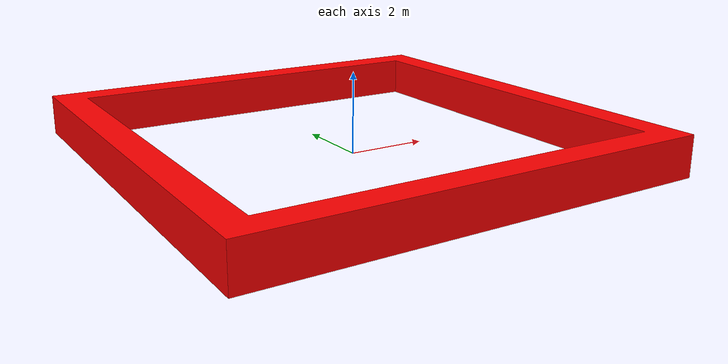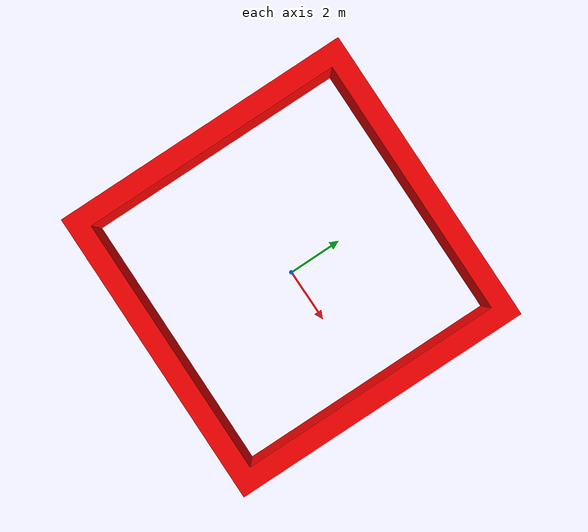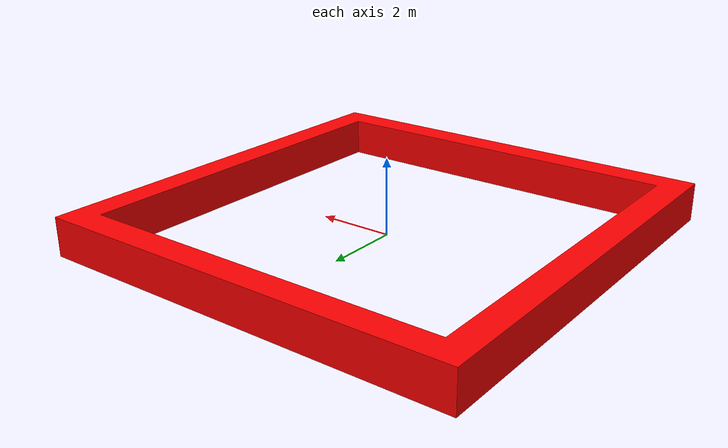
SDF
<?xml version="1.0" ?>
<sdf version="1.5">
  <model name="walls">
    <static>true</static>
    <link name="link">
      <pose>0.37 12.5 0 0 0 0</pose>
      <collision name="collision">
        <geometry>
            <mesh>
              <uri>
                model://walls/mesh/walls.stl
              </uri>
              <scale>
                0.9 0.9 0.1
              </scale>
            </mesh>
        </geometry>
      </collision>
      <visual name="visual">
        <cast_shadows>true</cast_shadows>
        <geometry>
            <mesh>
              <uri>
                model://walls/mesh/walls.stl
              </uri>
              <scale>
                0.9 0.9 0.1
              </scale>
            </mesh>
        </geometry>
        <material> <!-- color soft yellow -->
          <ambient>1 0 0 1</ambient>
          <diffuse>1 0 0 1</diffuse>
          <specular>0 0 0 0</specular>
          <emissive>0 0 0 1</emissive>
        </material>
      </visual>
    </link>
  </model>

</sdf>
